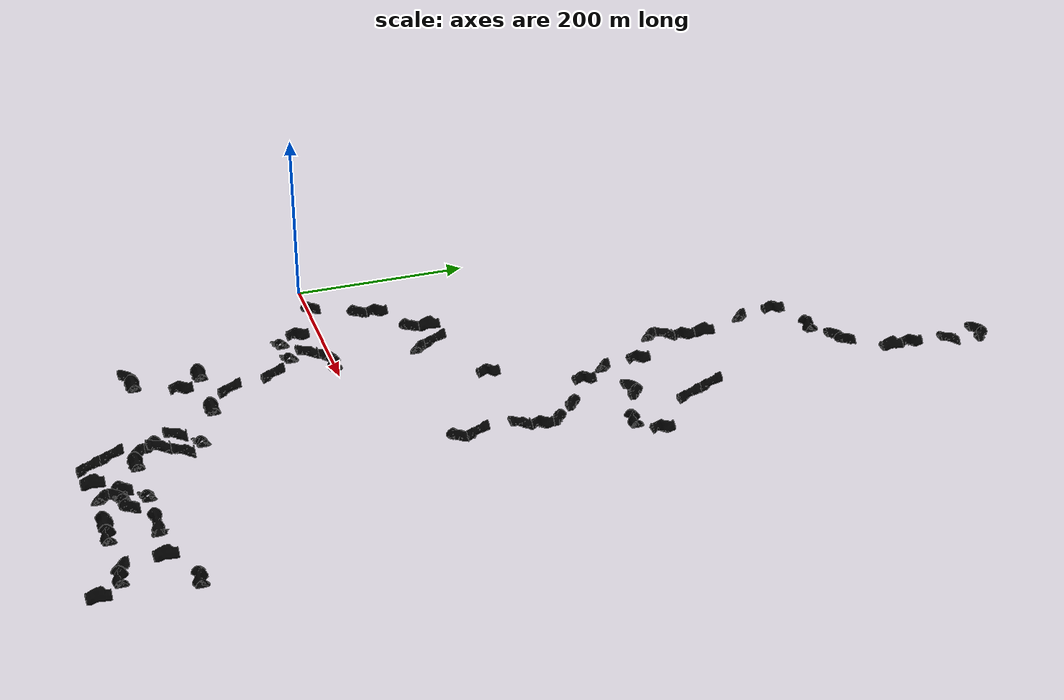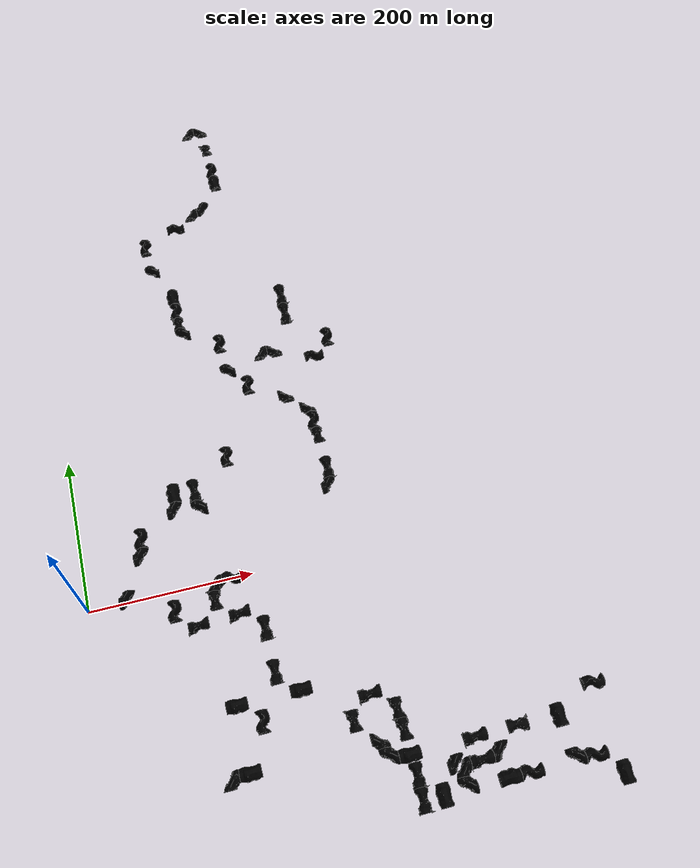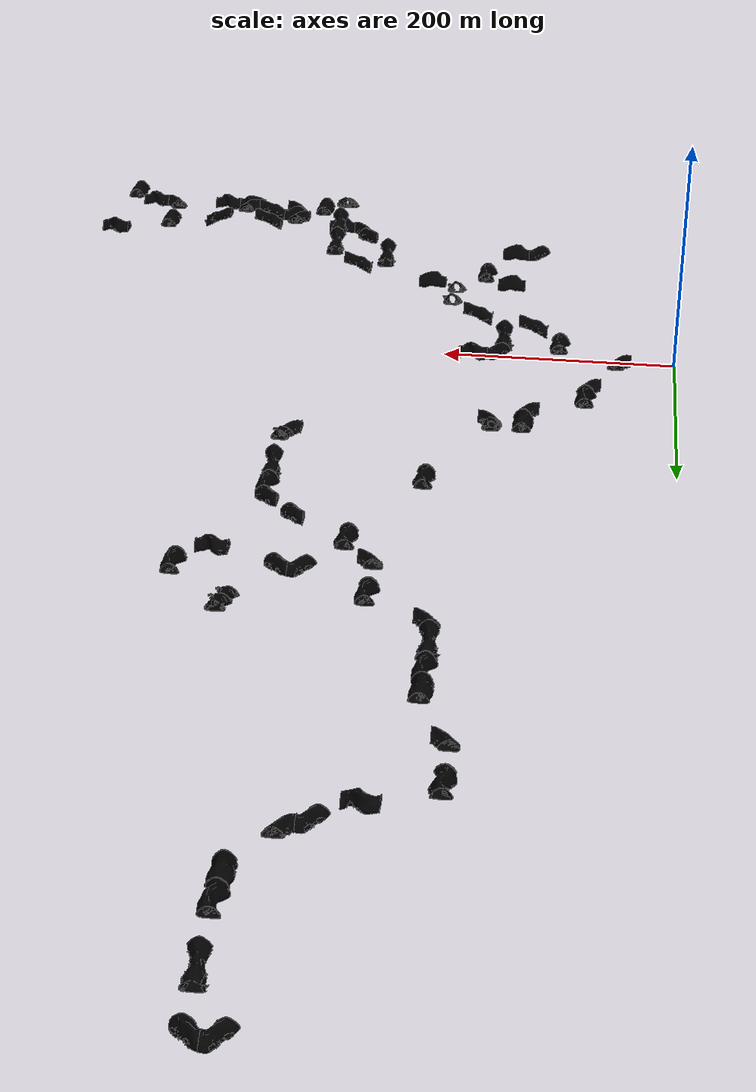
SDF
<sdf version="1.6">
 <world name="minimal_world">
  <physics name="1ms" type="ode">
   <max_step_size>0.004</max_step_size>
   <real_time_factor>1.0</real_time_factor>
  </physics>
  <scene>
   <ambient>0.1 0.1 0.1 1.0</ambient>
   <background>0 0 0 1.0</background>
   <grid>false</grid>
   <origin_visual>false</origin_visual>
  </scene>
  <atmosphere type="adiabatic">
   <temperature>288</temperature>
   <temperature_gradient>0.3</temperature_gradient>
  </atmosphere>
  <include>
   <static>true</static>
   <name>tile_3</name>
   <pose>75 50 0 0 0 -0</pose>
   <uri>https://fuel.ignitionrobotics.org/1.0/OpenRobotics/models/Cave Corner 02 Lights Type B</uri>
  </include>
  <include>
   <static>true</static>
   <name>tile_5</name>
   <pose>125 125 0 0 -0 0</pose>
   <uri>https://fuel.ignitionrobotics.org/1.0/OpenRobotics/models/Cave Straight 04 Lights Type B</uri>
  </include>
  <include>
   <static>true</static>
   <name>tile_7</name>
   <pose>125 100 0 0 0 -0</pose>
   <uri>https://fuel.ignitionrobotics.org/1.0/OpenRobotics/models/Cave Corner 02 Lights Type B</uri>
  </include>
  <include>
   <static>true</static>
   <name>tile_8</name>
   <pose>75 75 0 0 -0 0</pose>
   <uri>https://fuel.ignitionrobotics.org/1.0/OpenRobotics/models/Cave Straight 03 Type B</uri>
  </include>
  <include>
   <static>true</static>
   <name>tile_9</name>
   <pose>50 0 0 0 0 -0</pose>
   <uri>https://fuel.ignitionrobotics.org/1.0/OpenRobotics/models/Cave Corner 02 Lights Type B</uri>
  </include>
  <include>
   <static>true</static>
   <name>tile_10</name>
   <pose>150 -25 0 0 0 -0</pose>
   <uri>https://fuel.ignitionrobotics.org/1.0/OpenRobotics/models/Cave Elevation Lights Type B</uri>
  </include>
  <include>
   <static>true</static>
   <name>tile_17</name>
   <pose>175 0 0 0 0 -1.5708</pose>
   <uri>https://fuel.ignitionrobotics.org/1.0/OpenRobotics/models/Cave Straight 03 Type B</uri>
  </include>
  <include>
   <static>true</static>
   <name>tile_18</name>
   <pose>100 -25 0 0 0 -0</pose>
   <uri>https://fuel.ignitionrobotics.org/1.0/OpenRobotics/models/Cave Straight 03 Type B</uri>
  </include>
  <include>
   <static>true</static>
   <name>tile_22</name>
   <pose>150 0 0 0 -0 3.14159</pose>
   <uri>https://fuel.ignitionrobotics.org/1.0/OpenRobotics/models/Cave Corner 02 Lights Type B</uri>
  </include>
  <include>
   <static>true</static>
   <name>tile_24</name>
   <pose>325 100 -30 0 -0 0</pose>
   <uri>https://fuel.ignitionrobotics.org/1.0/OpenRobotics/models/Cave Corner 02 Lights Type B</uri>
  </include>
  <include>
   <static>true</static>
   <name>tile_25</name>
   <pose>300 250 -30 0 -0 1.5708</pose>
   <uri>https://fuel.ignitionrobotics.org/1.0/OpenRobotics/models/Cave Corner 02 Lights Type B</uri>
  </include>
  <include>
   <static>true</static>
   <name>tile_26</name>
   <pose>325 225 -30 0 -0 1.5708</pose>
   <uri>https://fuel.ignitionrobotics.org/1.0/OpenRobotics/models/Cave Corner 02 Lights Type B</uri>
  </include>
  <include>
   <static>true</static>
   <name>tile_28</name>
   <pose>325 200 -30 0 0 -0</pose>
   <uri>https://fuel.ignitionrobotics.org/1.0/OpenRobotics/models/Cave Straight 03 Type B</uri>
  </include>
  <include>
   <static>true</static>
   <name>tile_29</name>
   <pose>325 175 -30 0 0 -0</pose>
   <uri>https://fuel.ignitionrobotics.org/1.0/OpenRobotics/models/Cave Elevation Lights Type B</uri>
  </include>
  <include>
   <static>true</static>
   <name>tile_30</name>
   <pose>325 125 -30 0 -0 3.14159</pose>
   <uri>https://fuel.ignitionrobotics.org/1.0/OpenRobotics/models/Cave Elevation Lights Type B</uri>
  </include>
  <include>
   <static>true</static>
   <name>tile_38</name>
   <pose>200 175 -30 0 0 -3.14159</pose>
   <uri>https://fuel.ignitionrobotics.org/1.0/OpenRobotics/models/Cave Straight 03 Type B</uri>
  </include>
  <include>
   <static>true</static>
   <name>tile_40</name>
   <pose>125 -50 0 0 -0 1.5708</pose>
   <uri>https://fuel.ignitionrobotics.org/1.0/OpenRobotics/models/Cave Elevation Lights Type B</uri>
  </include>
  <include>
   <static>true</static>
   <name>tile_41</name>
   <pose>175 -50 10 0 -0 1.5708</pose>
   <uri>https://fuel.ignitionrobotics.org/1.0/OpenRobotics/models/Cave Elevation Lights Type B</uri>
  </include>
  <include>
   <static>true</static>
   <name>tile_46</name>
   <pose>150 125 -10 0 -0 3.14159</pose>
   <uri>https://fuel.ignitionrobotics.org/1.0/OpenRobotics/models/Cave Elevation Lights Type B</uri>
  </include>
  <include>
   <static>true</static>
   <name>tile_47</name>
   <pose>150 100 -10 0 0 -1.5708</pose>
   <uri>https://fuel.ignitionrobotics.org/1.0/OpenRobotics/models/Cave Corner 02 Lights Type B</uri>
  </include>
  <include>
   <static>true</static>
   <name>tile_51</name>
   <pose>250 275 -30 0 -0 3.14159</pose>
   <uri>https://fuel.ignitionrobotics.org/1.0/OpenRobotics/models/Cave Straight 03 Type B</uri>
  </include>
  <include>
   <static>true</static>
   <name>tile_53</name>
   <pose>225 300 -30 0 0 -1.5708</pose>
   <uri>https://fuel.ignitionrobotics.org/1.0/OpenRobotics/models/Cave Corner 02 Lights Type B</uri>
  </include>
  <include>
   <static>true</static>
   <name>tile_54</name>
   <pose>275 325 -30 0 0 -3.14159</pose>
   <uri>https://fuel.ignitionrobotics.org/1.0/OpenRobotics/models/Cave Corner 02 Lights Type B</uri>
  </include>
  <include>
   <static>true</static>
   <name>tile_55</name>
   <pose>300 325 -30 0 -0 1.5708</pose>
   <uri>https://fuel.ignitionrobotics.org/1.0/OpenRobotics/models/Cave Corner 02 Lights Type B</uri>
  </include>
  <include>
   <static>true</static>
   <name>tile_58</name>
   <pose>350 300 -30 0 0 -1.5708</pose>
   <uri>https://fuel.ignitionrobotics.org/1.0/OpenRobotics/models/Cave Straight 03 Type B</uri>
  </include>
  <include>
   <static>true</static>
   <name>tile_63</name>
   <pose>375 325 -30 0 -0 0</pose>
   <uri>https://fuel.ignitionrobotics.org/1.0/OpenRobotics/models/Cave Straight 03 Type B</uri>
  </include>
  <include>
   <static>true</static>
   <name>tile_65</name>
   <pose>325 400 -20 0 -0 3.14159</pose>
   <uri>https://fuel.ignitionrobotics.org/1.0/OpenRobotics/models/Cave Elevation Type B</uri>
  </include>
  <include>
   <static>true</static>
   <name>tile_66</name>
   <pose>325 375 -30 0 -0 3.14159</pose>
   <uri>https://fuel.ignitionrobotics.org/1.0/OpenRobotics/models/Cave Elevation Type B</uri>
  </include>
  <include>
   <static>true</static>
   <name>tile_69</name>
   <pose>225 350 -30 0 -0 0</pose>
   <uri>https://fuel.ignitionrobotics.org/1.0/OpenRobotics/models/Cave Straight 03 Type B</uri>
  </include>
  <include>
   <static>true</static>
   <name>tile_72</name>
   <pose>175 375 -30 0 0 -1.5708</pose>
   <uri>https://fuel.ignitionrobotics.org/1.0/OpenRobotics/models/Cave Corner 02 Type B</uri>
  </include>
  <include>
   <static>true</static>
   <name>tile_73</name>
   <pose>175 400 -40 0 0 -0</pose>
   <uri>https://fuel.ignitionrobotics.org/1.0/OpenRobotics/models/Cave Elevation Type B</uri>
  </include>
  <include>
   <static>true</static>
   <name>tile_74</name>
   <pose>175 425 -40 0 0 -0</pose>
   <uri>https://fuel.ignitionrobotics.org/1.0/OpenRobotics/models/Cave Straight 03 Type B</uri>
  </include>
  <include>
   <static>true</static>
   <name>tile_77</name>
   <pose>150 500 -40 0 0 -1.5708</pose>
   <uri>https://fuel.ignitionrobotics.org/1.0/OpenRobotics/models/Cave Corner 02 Type B</uri>
  </include>
  <include>
   <static>true</static>
   <name>tile_79</name>
   <pose>150 550 -40 0 -0 3.14159</pose>
   <uri>https://fuel.ignitionrobotics.org/1.0/OpenRobotics/models/Cave Straight 03 Type B</uri>
  </include>
  <include>
   <static>true</static>
   <name>tile_80</name>
   <pose>175 450 -40 0 -0 0</pose>
   <uri>https://fuel.ignitionrobotics.org/1.0/OpenRobotics/models/Cave Straight 04 Type B</uri>
  </include>
  <include>
   <static>true</static>
   <name>tile_83</name>
   <pose>200 575 -40 0 -0 1.5708</pose>
   <uri>https://fuel.ignitionrobotics.org/1.0/OpenRobotics/models/Cave Straight 03 Type B</uri>
  </include>
  <include>
   <static>true</static>
   <name>tile_85</name>
   <pose>225 600 -40 0 0 -3.14159</pose>
   <uri>https://fuel.ignitionrobotics.org/1.0/OpenRobotics/models/Cave Corner 02 Type B</uri>
  </include>
  <include>
   <static>true</static>
   <name>tile_86</name>
   <pose>250 600 -40 0 -0 0</pose>
   <uri>https://fuel.ignitionrobotics.org/1.0/OpenRobotics/models/Cave Corner 02 Type B</uri>
  </include>
  <include>
   <static>true</static>
   <name>tile_89</name>
   <pose>275 725 -50 0 0 -0</pose>
   <uri>https://fuel.ignitionrobotics.org/1.0/OpenRobotics/models/Cave Elevation Type B</uri>
  </include>
  <include>
   <static>true</static>
   <name>tile_91</name>
   <pose>275 675 -40 0 0 -0</pose>
   <uri>https://fuel.ignitionrobotics.org/1.0/OpenRobotics/models/Cave Straight 03 Type B</uri>
  </include>
  <include>
   <static>true</static>
   <name>tile_92</name>
   <pose>275 650 -40 0 -0 0</pose>
   <uri>https://fuel.ignitionrobotics.org/1.0/OpenRobotics/models/Cave Straight 04 Type B</uri>
  </include>
  <include>
   <static>true</static>
   <name>tile_94</name>
   <pose>250 775 -50 0 -0 3.14159</pose>
   <uri>https://fuel.ignitionrobotics.org/1.0/OpenRobotics/models/Cave Corner 02 Type B</uri>
  </include>
  <include>
   <static>true</static>
   <name>tile_95</name>
   <pose>275 775 -50 0 -0 1.5708</pose>
   <uri>https://fuel.ignitionrobotics.org/1.0/OpenRobotics/models/Cave Corner 02 Type B</uri>
  </include>
  <include>
   <static>true</static>
   <name>tile_101</name>
   <pose>225 -150 0 0 -0 1.5708</pose>
   <uri>https://fuel.ignitionrobotics.org/1.0/OpenRobotics/models/Cave Straight 04 Type B</uri>
  </include>
  <include>
   <static>true</static>
   <name>tile_104</name>
   <pose>300 -175 0 0 -0 1.5708</pose>
   <uri>https://fuel.ignitionrobotics.org/1.0/OpenRobotics/models/Cave Elevation Type B</uri>
  </include>
  <include>
   <static>true</static>
   <name>tile_105</name>
   <pose>275 -200 0 0 -0 0</pose>
   <uri>https://fuel.ignitionrobotics.org/1.0/OpenRobotics/models/Cave Elevation Type B</uri>
  </include>
  <include>
   <static>true</static>
   <name>tile_107</name>
   <pose>300 -225 10 0 -0 1.5708</pose>
   <uri>https://fuel.ignitionrobotics.org/1.0/OpenRobotics/models/Cave Corner 02 Type B</uri>
  </include>
  <include>
   <static>true</static>
   <name>tile_110</name>
   <pose>175 -175 0 0 -0 0</pose>
   <uri>https://fuel.ignitionrobotics.org/1.0/OpenRobotics/models/Cave Straight 03 Type B</uri>
  </include>
  <include>
   <static>true</static>
   <name>tile_112</name>
   <pose>150 -150 0 0 -0 1.5708</pose>
   <uri>https://fuel.ignitionrobotics.org/1.0/OpenRobotics/models/Cave Straight 04 Type B</uri>
  </include>
  <include>
   <static>true</static>
   <name>tile_115</name>
   <pose>325 -250 10 0 -0 1.5708</pose>
   <uri>https://fuel.ignitionrobotics.org/1.0/OpenRobotics/models/Cave Straight 04 Type B</uri>
  </include>
  <include>
   <static>true</static>
   <name>tile_116</name>
   <pose>325 -200 10 0 0 -0</pose>
   <uri>https://fuel.ignitionrobotics.org/1.0/OpenRobotics/models/Cave Elevation Type B</uri>
  </include>
  <include>
   <static>true</static>
   <name>tile_117</name>
   <pose>325 -225 20 0 0 -0</pose>
   <uri>https://fuel.ignitionrobotics.org/1.0/OpenRobotics/models/Cave Elevation Type B</uri>
  </include>
  <include>
   <static>true</static>
   <name>tile_118</name>
   <pose>300 -250 10 0 0 -1.5708</pose>
   <uri>https://fuel.ignitionrobotics.org/1.0/OpenRobotics/models/Cave Corner 02 Type B</uri>
  </include>
  <include>
   <static>true</static>
   <name>tile_125</name>
   <pose>425 -275 20 0 -0 0</pose>
   <uri>https://fuel.ignitionrobotics.org/1.0/OpenRobotics/models/Cave Corner 02 Type B</uri>
  </include>
  <include>
   <static>true</static>
   <name>tile_126</name>
   <pose>400 -250 10 0 -0 1.5708</pose>
   <uri>https://fuel.ignitionrobotics.org/1.0/OpenRobotics/models/Cave Elevation Type B</uri>
  </include>
  <include>
   <static>true</static>
   <name>tile_127</name>
   <pose>400 -275 10 0 -0 1.5708</pose>
   <uri>https://fuel.ignitionrobotics.org/1.0/OpenRobotics/models/Cave Elevation Type B</uri>
  </include>
  <include>
   <static>true</static>
   <name>tile_128</name>
   <pose>375 -275 10 0 -0 0</pose>
   <uri>https://fuel.ignitionrobotics.org/1.0/OpenRobotics/models/Cave Corner 02 Type B</uri>
  </include>
  <include>
   <static>true</static>
   <name>tile_129</name>
   <pose>375 -275 10 0 -0 3.14159</pose>
   <uri>https://fuel.ignitionrobotics.org/1.0/OpenRobotics/models/Cave Corner 02 Type B</uri>
  </include>
  <include>
   <static>true</static>
   <name>tile_131</name>
   <pose>450 -250 10 0 -0 -1.5708</pose>
   <uri>https://fuel.ignitionrobotics.org/1.0/OpenRobotics/models/Cave Elevation Type B</uri>
  </include>
  <include>
   <static>true</static>
   <name>tile_132</name>
   <pose>350 -300 10 0 -0 0</pose>
   <uri>https://fuel.ignitionrobotics.org/1.0/OpenRobotics/models/Cave Straight 04 Type B</uri>
  </include>
  <include>
   <static>true</static>
   <name>tile_133</name>
   <pose>375 -300 10 0 0 -1.5708</pose>
   <uri>https://fuel.ignitionrobotics.org/1.0/OpenRobotics/models/Cave Corner 02 Type B</uri>
  </include>
  <include>
   <static>true</static>
   <name>tile_136</name>
   <pose>450 -300 10 0 0 -1.5708</pose>
   <uri>https://fuel.ignitionrobotics.org/1.0/OpenRobotics/models/Cave Straight 03 Type B</uri>
  </include>
  <include>
   <static>true</static>
   <name>tile_138</name>
   <pose>425 -300 10 0 0 -1.5708</pose>
   <uri>https://fuel.ignitionrobotics.org/1.0/OpenRobotics/models/Cave Straight 04 Type B</uri>
  </include>
  <include>
   <static>true</static>
   <name>tile_141</name>
   <pose>150 -225 0 0 -0 1.5708</pose>
   <uri>https://fuel.ignitionrobotics.org/1.0/OpenRobotics/models/Cave Straight 04 Type B</uri>
  </include>
  <include>
   <static>true</static>
   <name>tile_142</name>
   <pose>125 -225 0 0 -0 3.14159</pose>
   <uri>https://fuel.ignitionrobotics.org/1.0/OpenRobotics/models/Cave Corner 02 Type B</uri>
  </include>
  <include>
   <static>true</static>
   <name>tile_147</name>
   <pose>500 -300 10 0 0 -1.5708</pose>
   <uri>https://fuel.ignitionrobotics.org/1.0/OpenRobotics/models/Cave Corner 02 Type B</uri>
  </include>
  <include>
   <static>true</static>
   <name>tile_148</name>
   <pose>525 -300 10 0 0 -1.5708</pose>
   <uri>https://fuel.ignitionrobotics.org/1.0/OpenRobotics/models/Cave Straight 03 Type B</uri>
  </include>
  <include>
   <static>true</static>
   <name>tile_149</name>
   <pose>500 -250 10 0 -0 0</pose>
   <uri>https://fuel.ignitionrobotics.org/1.0/OpenRobotics/models/Cave Straight 04 Type B</uri>
  </include>
  <include>
   <static>true</static>
   <name>tile_150</name>
   <pose>550 -325 10 0 -0 0</pose>
   <uri>https://fuel.ignitionrobotics.org/1.0/OpenRobotics/models/Cave Straight 04 Type B</uri>
  </include>
  <include>
   <static>true</static>
   <name>tile_153</name>
   <pose>550 -225 10 0 -0 1.5708</pose>
   <uri>https://fuel.ignitionrobotics.org/1.0/OpenRobotics/models/Cave Straight 03 Type B</uri>
  </include>
  <include>
   <static>true</static>
   <name>tile_154</name>
   <pose>200 -125 0 0 0 -3.14159</pose>
   <uri>https://fuel.ignitionrobotics.org/1.0/OpenRobotics/models/Cave Elevation Type B</uri>
  </include>
  <include>
   <static>true</static>
   <name>tile_155</name>
   <pose>200 -75 10 0 0 -3.14159</pose>
   <uri>https://fuel.ignitionrobotics.org/1.0/OpenRobotics/models/Cave Elevation Type B</uri>
  </include>
  <include>
   <static>true</static>
   <name>tile_156</name>
   <pose>325 -275 20 0 -0 3.14159</pose>
   <uri>https://fuel.ignitionrobotics.org/1.0/OpenRobotics/models/Cave Elevation Type B</uri>
  </include>
  <include>
   <static>true</static>
   <name>tile_157</name>
   <pose>325 -300 10 0 -0 3.14159</pose>
   <uri>https://fuel.ignitionrobotics.org/1.0/OpenRobotics/models/Cave Elevation Type B</uri>
  </include>
 </world>
</sdf>

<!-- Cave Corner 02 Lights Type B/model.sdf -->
<sdf version="1.6">
  <model name="Cave Corner 02 Lights Type B">
    <include>
      <name>cave_corner_02</name>
      <uri>model://Cave Corner 02 Type B</uri>
    </include>
    <static>true</static>
    <link name="lights">
      <light name="spot_light1" type="spot">
        <pose>-2 6.0 3.5 0 0 0</pose>
        <diffuse>0 0 0 1</diffuse>
        <specular>0 0 0 1</specular>
        <attenuation>
          <range>20</range>
          <linear>0.2</linear>
          <constant>0.5</constant>
          <quadratic>0.02</quadratic>
        </attenuation>
        <spot>
          <inner_angle>2.0</inner_angle>
          <outer_angle>3.1</outer_angle>
          <falloff>1.0</falloff>
        </spot>
        <cast_shadows>false</cast_shadows>
      </light>

      <light name="spot_light2" type="spot">
        <pose>-6.5 -.25 4.5 0 0 0</pose>
        <diffuse>0 0 0 1</diffuse>
        <specular>0 0 0 1</specular>
        <attenuation>
          <range>20</range>
          <linear>0.2</linear>
          <constant>0.5</constant>
          <quadratic>0.02</quadratic>
        </attenuation>
        <spot>
          <inner_angle>2.0</inner_angle>
          <outer_angle>3.1</outer_angle>
          <falloff>1.0</falloff>
        </spot>
        <cast_shadows>false</cast_shadows>
      </light>
    </link>
  </model>
</sdf>

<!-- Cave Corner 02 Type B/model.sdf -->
<sdf version="1.6">
  <model name="Cave Corner 02 Type B">
    <static>true</static>
    <link name="base_link">
      <collision name="collision">
        <pose>0 0 0 0 0 0</pose>
        <geometry>
          <mesh>
            <uri>model://cave_corner_02/meshes/cavecorner02.dae</uri>
            <scale>1.005 1.005 1.0</scale>
          </mesh>
        </geometry>
      </collision>
      <visual name="CaveWall_visual">
        <geometry>
          <mesh>
            <uri>model://cave_corner_02/meshes/cavecorner02.dae</uri>
            <submesh>
              <name>CaveWall</name>
              <center>false</center>
            </submesh>
            <scale>1.005 1.005 1.0</scale>
          </mesh>
        </geometry>
        <material>
          <diffuse>0 0 0 1</diffuse>
          <specular>0 0 0 1</specular>
          <pbr>
            <metal>
              <albedo_map>model://cave_corner_02/materials/textures/CaveWall_Albedo.png</albedo_map>
              <normal_map>model://cave_corner_02/materials/textures/CaveWall_Normal.png</normal_map>
              <roughness_map>model://cave_corner_02/materials/textures/CaveWall_Roughness.png</roughness_map>
            </metal>
          </pbr>

          <script>
            <uri>model://cave_corner_02/materials/scripts/</uri>
            <uri>model://cave_corner_02/materials/textures/</uri>
            <name>CaveTile/CaveWall_Diffuse</name>
          </script>
        </material>
      </visual>
      <visual name="StriatedRock_visual">
        <geometry>
          <mesh>
            <uri>model://cave_corner_02/meshes/cavecorner02.dae</uri>
            <submesh>
              <name>StriatedRock</name>
              <center>false</center>
            </submesh>
            <scale>1.005 1.005 1.0</scale>
          </mesh>
        </geometry>
        <material>
          <diffuse>0 0 0 1</diffuse>
          <specular>0 0 0 1</specular>
          <pbr>
            <metal>
              <albedo_map>model://cave_corner_02/materials/textures/StriatedRock_Albedo.png</albedo_map>
              <normal_map>model://cave_corner_02/materials/textures/StriatedRock_Normal.png</normal_map>
              <roughness_map>model://cave_corner_02/materials/textures/StriatedRock_Roughness.png</roughness_map>
            </metal>
          </pbr>

          <script>
            <uri>model://cave_corner_02/materials/scripts/</uri>
            <uri>model://cave_corner_02/materials/textures/</uri>
            <name>CaveTile/StriatedRock_Diffuse</name>
          </script>
        </material>
      </visual>
      <visual name="RockPile_visual">
        <geometry>
          <mesh>
            <uri>model://cave_corner_02/meshes/cavecorner02.dae</uri>
            <submesh>
              <name>RockPile</name>
              <center>false</center>
            </submesh>
            <scale>1.005 1.005 1.0</scale>
          </mesh>
        </geometry>
        <material>
          <diffuse>0 0 0 1</diffuse>
          <specular>0 0 0 1</specular>
          <pbr>
            <metal>
              <albedo_map>model://cave_corner_02/materials/textures/RockPile_Albedo.png</albedo_map>
              <normal_map>model://cave_corner_02/materials/textures/RockPile_Normal.png</normal_map>
              <roughness_map>model://cave_corner_02/materials/textures/RockPile_Roughness.png</roughness_map>
            </metal>
          </pbr>

          <script>
            <uri>model://cave_corner_02/materials/scripts/</uri>
            <uri>model://cave_corner_02/materials/textures/</uri>
            <name>CaveTile/RockPile_Diffuse</name>
          </script>
        </material>
      </visual>
    </link>
  </model>
</sdf>

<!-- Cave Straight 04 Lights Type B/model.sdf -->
<sdf version="1.6">
  <model name="Cave Straight 04 Lights Type B">
    <include>
      <name>cave_straight_04</name>
      <uri>model://Cave Straight 04 Type B</uri>
    </include>
    <static>true</static>
    <link name="lights">
      <light name="spot_light1" type="spot">
        <pose>0 8 8.0 0 0 0</pose>
        <diffuse>0 0 0 1</diffuse>
        <specular>0 0 0 1</specular>
        <attenuation>
          <range>20</range>
          <linear>0.2</linear>
          <constant>0.3</constant>
          <quadratic>0.01</quadratic>
        </attenuation>
        <spot>
          <inner_angle>2.0</inner_angle>
          <outer_angle>3.1</outer_angle>
          <falloff>0.6</falloff>
        </spot>
        <cast_shadows>false</cast_shadows>
      </light>

      <light name="spot_light2" type="spot">
        <pose>0 -6.0 4.5 0 0 0</pose>
        <diffuse>0 0 0 1</diffuse>
        <specular>0 0 0 1</specular>
        <attenuation>
          <range>20</range>
          <linear>0.2</linear>
          <constant>0.3</constant>
          <quadratic>0.01</quadratic>
        </attenuation>
        <spot>
          <inner_angle>2.0</inner_angle>
          <outer_angle>3.1</outer_angle>
          <falloff>0.6</falloff>
        </spot>
        <cast_shadows>false</cast_shadows>
      </light>
    </link>
  </model>
</sdf>

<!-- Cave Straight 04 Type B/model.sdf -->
<sdf version="1.6">
  <model name="Cave Straight 04 Type B">
    <static>true</static>
    <link name="base_link">
      <collision name="collision">
        <pose>0 0 0 0 0 0</pose>
        <geometry>
          <mesh>
            <uri>model://Cave Straight 04 Type B/meshes/cavestraight04.dae</uri>
            <scale>1.0 1.0 1.0</scale>
          </mesh>
        </geometry>
      </collision>
      <visual name="StriatedRock_visual">
        <geometry>
          <mesh>
            <uri>model://Cave Straight 04 Type B/meshes/cavestraight04.dae</uri>
            <submesh>
              <name>StriatedRock</name>
              <center>false</center>
            </submesh>
          </mesh>
        </geometry>
        <material>
          <diffuse>0 0 0 1</diffuse>
          <specular>0 0 0 1</specular>
          <pbr>
            <metal>
              <albedo_map>model://Cave Straight 04 Type B/materials/textures/StriatedRock_Albedo.png</albedo_map>
              <normal_map>model://Cave Straight 04 Type B/materials/textures/StriatedRock_Normal.png</normal_map>
              <roughness_map>model://Cave Straight 04 Type B/materials/textures/StriatedRock_Roughness.png</roughness_map>
            </metal>
          </pbr>

          <script>
            <uri>model://Cave Straight 04 Type B/materials/scripts/</uri>
            <uri>model://Cave Straight 04 Type B/materials/textures/</uri>
            <name>CaveTile/StriatedRock_Diffuse</name>
          </script>
        </material>
      </visual>
      <visual name="RockPile_visual">
        <geometry>
          <mesh>
            <uri>model://Cave Straight 04 Type B/meshes/cavestraight04.dae</uri>
            <submesh>
              <name>RockPile</name>
              <center>false</center>
            </submesh>
          </mesh>
        </geometry>
        <material>
          <diffuse>0 0 0 1</diffuse>
          <specular>0 0 0 1</specular>
          <pbr>
            <metal>
              <albedo_map>model://Cave Straight 04 Type B/materials/textures/RockPile_Albedo.png</albedo_map>
              <normal_map>model://Cave Straight 04 Type B/materials/textures/RockPile_Normal.png</normal_map>
              <roughness_map>model://Cave Straight 04 Type B/materials/textures/RockPile_Roughness.png</roughness_map>
            </metal>
          </pbr>

          <script>
            <uri>model://Cave Straight 04 Type B/materials/scripts/</uri>
            <uri>model://Cave Straight 04 Type B/materials/textures/</uri>
            <name>CaveTile/RockPile_Diffuse</name>
          </script>
        </material>
      </visual>
      <visual name="CaveWall_visual">
        <geometry>
          <mesh>
            <uri>model://Cave Straight 04 Type B/meshes/cavestraight04.dae</uri>
            <submesh>
              <name>CaveWall</name>
              <center>false</center>
            </submesh>
          </mesh>
        </geometry>
        <material>
          <diffuse>0 0 0 1</diffuse>
          <specular>0 0 0 1</specular>
          <pbr>
            <metal>
              <albedo_map>model://Cave Straight 04 Type B/materials/textures/CaveWall_Albedo.png</albedo_map>
              <normal_map>model://Cave Straight 04 Type B/materials/textures/CaveWall_Normal.png</normal_map>
              <roughness_map>model://Cave Straight 04 Type B/materials/textures/CaveWall_Roughness.png</roughness_map>
            </metal>
          </pbr>

          <script>
            <uri>model://Cave Straight 04 Type B/materials/scripts/</uri>
            <uri>model://Cave Straight 04 Type B/materials/textures/</uri>
            <name>CaveTile/CaveWall_Diffuse</name>
          </script>
        </material>
      </visual>
    </link>
  </model>
</sdf>

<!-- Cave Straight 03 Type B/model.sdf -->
<sdf version="1.6">
  <model name="Cave Straight 03 Type B">
    <static>true</static>
    <link name="base_link">
      <collision name="collision">
        <pose>0 0 0 0 0 0</pose>
        <geometry>
          <mesh>
            <uri>model://Cave Straight 03 Type B/meshes/cavestraight03.dae</uri>
            <scale>1.005 1.005 1.0</scale>
          </mesh>
        </geometry>
      </collision>
      <visual name="StriatedRock_visual">
        <geometry>
          <mesh>
            <uri>model://Cave Straight 03 Type B/meshes/cavestraight03.dae</uri>
            <submesh>
              <name>StriatedRock</name>
              <center>false</center>
            </submesh>
            <scale>1.005 1.005 1.0</scale>
          </mesh>
        </geometry>
        <material>
          <diffuse>0 0 0 1</diffuse>
          <specular>0 0 0 1</specular>
          <pbr>
            <metal>
              <albedo_map>model://Cave Straight 03 Type B/materials/textures/StriatedRock_Albedo.png</albedo_map>
              <normal_map>model://Cave Straight 03 Type B/materials/textures/StriatedRock_Normal.png</normal_map>
              <roughness_map>model://Cave Straight 03 Type B/materials/textures/StriatedRock_Roughness.png</roughness_map>
            </metal>
          </pbr>

          <script>
            <uri>model://Cave Straight 03 Type B/materials/scripts/</uri>
            <uri>model://Cave Straight 03 Type B/materials/textures/</uri>
            <name>CaveTile/StriatedRock_Diffuse</name>
          </script>
        </material>
      </visual>
      <visual name="RockPile_visual">
        <geometry>
          <mesh>
            <uri>model://Cave Straight 03 Type B/meshes/cavestraight03.dae</uri>
            <submesh>
              <name>RockPile</name>
              <center>false</center>
            </submesh>
            <scale>1.005 1.005 1.0</scale>
          </mesh>
        </geometry>
        <material>
          <diffuse>0 0 0 1</diffuse>
          <specular>0 0 0 1</specular>
          <pbr>
            <metal>
              <albedo_map>model://Cave Straight 03 Type B/materials/textures/RockPile_Albedo.png</albedo_map>
              <normal_map>model://Cave Straight 03 Type B/materials/textures/RockPile_Normal.png</normal_map>
              <roughness_map>model://Cave Straight 03 Type B/materials/textures/RockPile_Roughness.png</roughness_map>
            </metal>
          </pbr>

          <script>
            <uri>model://Cave Straight 03 Type B/materials/scripts/</uri>
            <uri>model://Cave Straight 03 Type B/materials/textures/</uri>
            <name>CaveTile/RockPile_Diffuse</name>
          </script>
        </material>
      </visual>
      <visual name="CaveWall_visual">
        <geometry>
          <mesh>
            <uri>model://Cave Straight 03 Type B/meshes/cavestraight03.dae</uri>
            <submesh>
              <name>CaveWall</name>
              <center>false</center>
            </submesh>
            <scale>1.005 1.005 1.0</scale>
          </mesh>
        </geometry>
        <material>
          <diffuse>0 0 0 1</diffuse>
          <specular>0 0 0 1</specular>
          <pbr>
            <metal>
              <albedo_map>model://Cave Straight 03 Type B/materials/textures/CaveWall_Albedo.png</albedo_map>
              <normal_map>model://Cave Straight 03 Type B/materials/textures/CaveWall_Normal.png</normal_map>
              <roughness_map>model://Cave Straight 03 Type B/materials/textures/CaveWall_Roughness.png</roughness_map>
            </metal>
          </pbr>

          <script>
            <uri>model://Cave Straight 03 Type B/materials/scripts/</uri>
            <uri>model://Cave Straight 03 Type B/materials/textures/</uri>
            <name>CaveTile/CaveWall_Diffuse</name>
          </script>
        </material>
      </visual>
    </link>
  </model>
</sdf>

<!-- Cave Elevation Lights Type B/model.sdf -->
<sdf version="1.6">
  <model name="Cave Elevation Lights Type B">
    <static>true</static>
    <include>
      <name>cave_elevation</name>
      <uri>model://Cave Elevation Type B</uri>
    </include>

    <link name="light1">
      <light name="spot_light1" type="spot">
        <pose>0 -8 17.5 0 0 0</pose>
        <diffuse>0 0 0 1</diffuse>
        <specular>0 0 0 1</specular>
        <attenuation>
          <range>20</range>
          <linear>0.2</linear>
          <constant>1.0</constant>
          <quadratic>0.01</quadratic>
        </attenuation>
        <spot>
          <inner_angle>2.0</inner_angle>
          <outer_angle>3.1</outer_angle>
          <falloff>1.2</falloff>
        </spot>
        <cast_shadows>false</cast_shadows>
      </light>

      <light name="spot_light2" type="spot">
        <pose>0 2 13.5 0 0 0</pose>
        <diffuse>0 0 0 1</diffuse>
        <specular>0 0 0 1</specular>
        <attenuation>
          <range>20</range>
          <linear>0.2</linear>
          <constant>1.0</constant>
          <quadratic>0.01</quadratic>
        </attenuation>
        <spot>
          <inner_angle>2.0</inner_angle>
          <outer_angle>3.1</outer_angle>
          <falloff>1.2</falloff>
        </spot>
        <cast_shadows>false</cast_shadows>
      </light>

      <light name="spot_light3" type="spot">
        <pose>0 12 9 0 0 0</pose>
        <diffuse>0 0 0 1</diffuse>
        <specular>0 0 0 1</specular>
        <attenuation>
          <range>20</range>
          <linear>0.2</linear>
          <constant>1.0</constant>
          <quadratic>0.01</quadratic>
        </attenuation>
        <spot>
          <inner_angle>2.0</inner_angle>
          <outer_angle>3.1</outer_angle>
          <falloff>1.2</falloff>
        </spot>
        <cast_shadows>false</cast_shadows>
      </light>
    </link>
  </model>
</sdf>

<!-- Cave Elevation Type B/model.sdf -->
<sdf version="1.6">
  <model name="Cave Elevation Type B">
    <static>true</static>
    <link name="base_link">
      <collision name="collision">
        <pose>0 0 0 0 0 0</pose>
        <geometry>
          <mesh>
            <uri>model://Cave Elevation Type B/meshes/caveelevation.dae</uri>
            <scale>1.0 1.0 1.0</scale>
          </mesh>
        </geometry>
      </collision>
      <visual name="CaveWall_visual">
        <geometry>
          <mesh>
            <uri>model://Cave Elevation Type B/meshes/caveelevation.dae</uri>
            <submesh>
              <name>CaveWall</name>
              <center>false</center>
            </submesh>
          </mesh>
        </geometry>
        <material>
          <diffuse>0 0 0 1</diffuse>
          <specular>0 0 0 1</specular>
          <pbr>
            <metal>
              <albedo_map>model://Cave Elevation Type B/materials/textures/CaveWall_Albedo.png</albedo_map>
              <normal_map>model://Cave Elevation Type B/materials/textures/CaveWall_Normal.png</normal_map>
              <roughness_map>model://Cave Elevation Type B/materials/textures/CaveWall_Roughness.png</roughness_map>
            </metal>
          </pbr>

          <script>
            <uri>model://Cave Elevation Type B/materials/scripts/</uri>
            <uri>model://Cave Elevation Type B/materials/textures/</uri>
            <name>CaveTile/CaveWall_Diffuse</name>
          </script>
        </material>
      </visual>
      <visual name="RockPile_visual">
        <geometry>
          <mesh>
            <uri>model://Cave Elevation Type B/meshes/caveelevation.dae</uri>
            <submesh>
              <name>RockPile</name>
              <center>false</center>
            </submesh>
          </mesh>
        </geometry>
        <material>
          <diffuse>0 0 0 1</diffuse>
          <specular>0 0 0 1</specular>
          <pbr>
            <metal>
              <albedo_map>model://Cave Elevation Type B/materials/textures/RockPile_Albedo.png</albedo_map>
              <normal_map>model://Cave Elevation Type B/materials/textures/RockPile_Normal.png</normal_map>
              <roughness_map>model://Cave Elevation Type B/materials/textures/RockPile_Roughness.png</roughness_map>
            </metal>
          </pbr>

          <script>
            <uri>model://Cave Elevation Type B/materials/scripts/</uri>
            <uri>model://Cave Elevation Type B/materials/textures/</uri>
            <name>CaveTile/RockPile_Diffuse</name>
          </script>
        </material>
      </visual>
      <visual name="StriatedRock_visual">
        <geometry>
          <mesh>
            <uri>model://Cave Elevation Type B/meshes/caveelevation.dae</uri>
            <submesh>
              <name>StriatedRock</name>
              <center>false</center>
            </submesh>
          </mesh>
        </geometry>
        <material>
          <diffuse>0 0 0 1</diffuse>
          <specular>0 0 0 1</specular>
          <pbr>
            <metal>
              <albedo_map>model://Cave Elevation Type B/materials/textures/StriatedRock_Albedo.png</albedo_map>
              <normal_map>model://Cave Elevation Type B/materials/textures/StriatedRock_Normal.png</normal_map>
              <roughness_map>model://Cave Elevation Type B/materials/textures/StriatedRock_Roughness.png</roughness_map>
            </metal>
          </pbr>

          <script>
            <uri>model://Cave Elevation Type B/materials/scripts/</uri>
            <uri>model://Cave Elevation Type B/materials/textures/</uri>
            <name>CaveTile/StriatedRock_Diffuse</name>
          </script>
        </material>
      </visual>
    </link>

    <plugin filename="libignition-gazebo-performer-detector-system.so" name="ignition::gazebo::systems::PerformerDetector">
      <topic>/subt_performer_detector</topic>
      <pose>0 0 10 0 0 0</pose>
      <geometry>
        <box>
          <size>20 30 20</size>
        </box>
      </geometry>
      <header_data>
        <key>type</key>
        <value>elevation</value>
      </header_data>
    </plugin>
  </model>
</sdf>
